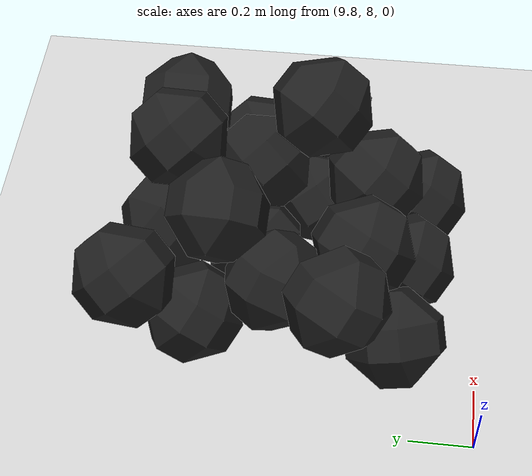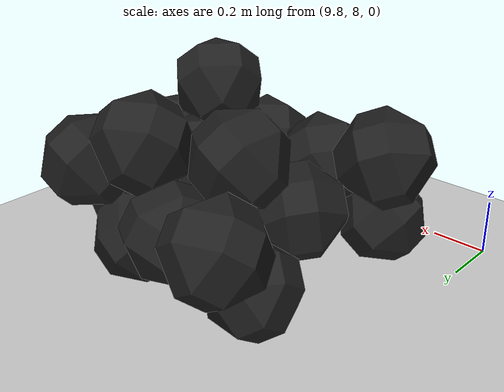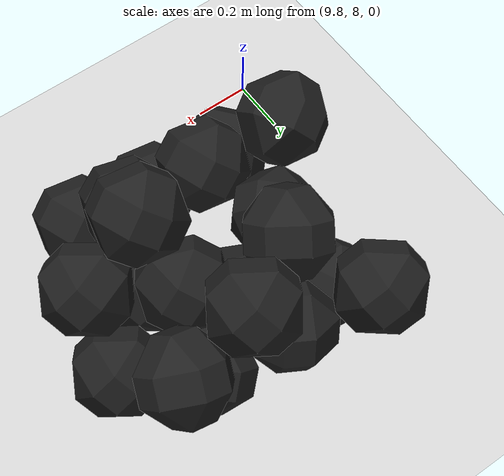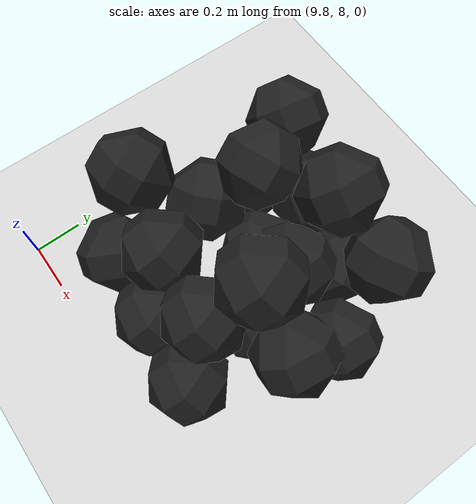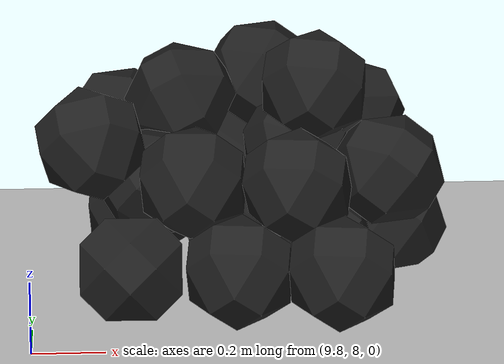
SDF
<sdf version="1.7">
 <world name="default">
  <model name="ground_plane">
   <static>1</static>
   <link name="link">
    <collision name="collision">
     <geometry><plane><normal>0 0 1</normal><size>100 100</size></plane></geometry>
     <surface><friction><ode><mu>100</mu><mu2>50</mu2></ode></friction></surface>
    </collision>
    <visual name="visual">
     <cast_shadows>0</cast_shadows>
     <geometry><plane><normal>0 0 1</normal><size>100 100</size></plane></geometry>
     <material>
      <script><uri>file://media/materials/scripts/gazebo.material</uri><name>Gazebo/Grey</name></script>
     </material>
    </visual>
   </link>
  </model>
  <model name="haoduomiantiaa_1">
   <link name="link_0">
    <inertial>
     <mass>0.2</mass>
     <inertia>
      <ixx>0.166667</ixx>
      <ixy>0</ixy>
      <ixz>0</ixz>
      <iyy>0.166667</iyy>
      <iyz>0</iyz>
      <izz>0.166667</izz>
     </inertia>
    </inertial>
    <visual name="visual">
     <geometry>
      <mesh>
       <uri>/home/lihaoyang/catkin_ws/src/pudong_gazebo/world/stl/haoduomianti.stl</uri>
       <scale>1 1 1</scale>
      </mesh>
     </geometry>
     <material>
      <lighting>1</lighting>
      <script><uri>file://media/materials/scripts/gazebo.material</uri><name>Gazebo/Black</name></script>
      <shader type="pixel"><normal_map>__default__</normal_map></shader>
      <ambient>0.3 0.3 0.3 1</ambient>
      <diffuse>0.7 0.7 0.7 1</diffuse>
      <specular>0.01 0.01 0.01 1</specular>
      <emissive>0 0 0 1</emissive>
     </material>
    </visual>
    <collision name="collision">
     <geometry>
      <mesh>
       <uri>/home/lihaoyang/catkin_ws/src/pudong_gazebo/world/stl/haoduomianti.stl</uri>
       <scale>1 1 1</scale>
      </mesh>
     </geometry>
     <surface>
      <friction>
       <ode><mu>1</mu><mu2>1</mu2><fdir1>0 0 0</fdir1><slip1>0</slip1><slip2>0</slip2></ode>
       <torsional>
        <coefficient>1</coefficient>
        <patch_radius>0</patch_radius>
        <surface_radius>0</surface_radius>
        <use_patch_radius>1</use_patch_radius>
        <ode><slip>0</slip></ode>
       </torsional>
      </friction>
      <bounce><restitution_coefficient>0</restitution_coefficient><threshold>1e+06</threshold></bounce>
      <contact>
       <collide_without_contact>0</collide_without_contact>
       <collide_without_contact_bitmask>1</collide_without_contact_bitmask>
       <collide_bitmask>1</collide_bitmask>
       <ode>
        <soft_cfm>0</soft_cfm>
        <soft_erp>0.2</soft_erp>
        <kp>1e+13</kp>
        <kd>1</kd>
        <max_vel>0.01</max_vel>
        <min_depth>0</min_depth>
       </ode>
       <bullet>
        <split_impulse>1</split_impulse>
        <split_impulse_penetration_threshold>-0.01</split_impulse_penetration_threshold>
        <soft_cfm>0</soft_cfm>
        <soft_erp>0.2</soft_erp>
        <kp>1e+13</kp>
        <kd>1</kd>
       </bullet>
      </contact>
     </surface>
    </collision>
   </link>
   <static>0</static>
   <pose>10.077 9.0909 0.114912 0.739694 -0.61934 0.940514</pose>
  </model>
  <model name="haoduomiantiaa_6">
   <link name="link_0">
    <inertial>
     <mass>0.2</mass>
     <inertia>
      <ixx>0.166667</ixx>
      <ixy>0</ixy>
      <ixz>0</ixz>
      <iyy>0.166667</iyy>
      <iyz>0</iyz>
      <izz>0.166667</izz>
     </inertia>
    </inertial>
    <visual name="visual">
     <geometry>
      <mesh>
       <uri>/home/lihaoyang/catkin_ws/src/pudong_gazebo/world/stl/haoduomianti.stl</uri>
       <scale>1 1 1</scale>
      </mesh>
     </geometry>
     <material>
      <lighting>1</lighting>
      <script><uri>file://media/materials/scripts/gazebo.material</uri><name>Gazebo/Black</name></script>
      <shader type="pixel"><normal_map>__default__</normal_map></shader>
      <ambient>0.3 0.3 0.3 1</ambient>
      <diffuse>0.7 0.7 0.7 1</diffuse>
      <specular>0.01 0.01 0.01 1</specular>
      <emissive>0 0 0 1</emissive>
     </material>
    </visual>
    <collision name="collision">
     <geometry>
      <mesh>
       <uri>/home/lihaoyang/catkin_ws/src/pudong_gazebo/world/stl/haoduomianti.stl</uri>
       <scale>1 1 1</scale>
      </mesh>
     </geometry>
     <surface>
      <friction>
       <ode><mu>1</mu><mu2>1</mu2><fdir1>0 0 0</fdir1><slip1>0</slip1><slip2>0</slip2></ode>
       <torsional>
        <coefficient>1</coefficient>
        <patch_radius>0</patch_radius>
        <surface_radius>0</surface_radius>
        <use_patch_radius>1</use_patch_radius>
        <ode><slip>0</slip></ode>
       </torsional>
      </friction>
      <bounce><restitution_coefficient>0</restitution_coefficient><threshold>1e+06</threshold></bounce>
      <contact>
       <collide_without_contact>0</collide_without_contact>
       <collide_without_contact_bitmask>1</collide_without_contact_bitmask>
       <collide_bitmask>1</collide_bitmask>
       <ode>
        <soft_cfm>0</soft_cfm>
        <soft_erp>0.2</soft_erp>
        <kp>1e+13</kp>
        <kd>1</kd>
        <max_vel>0.01</max_vel>
        <min_depth>0</min_depth>
       </ode>
       <bullet>
        <split_impulse>1</split_impulse>
        <split_impulse_penetration_threshold>-0.01</split_impulse_penetration_threshold>
        <soft_cfm>0</soft_cfm>
        <soft_erp>0.2</soft_erp>
        <kp>1e+13</kp>
        <kd>1</kd>
       </bullet>
      </contact>
     </surface>
    </collision>
   </link>
   <static>0</static>
   <pose>10.6437 8.86685 -0.100521 0.469259 -0.728322 0.060027</pose>
  </model>
  <model name="haoduomiantiaa_7">
   <link name="link_0">
    <inertial>
     <mass>0.2</mass>
     <inertia>
      <ixx>0.166667</ixx>
      <ixy>0</ixy>
      <ixz>0</ixz>
      <iyy>0.166667</iyy>
      <iyz>0</iyz>
      <izz>0.166667</izz>
     </inertia>
    </inertial>
    <visual name="visual">
     <geometry>
      <mesh>
       <uri>/home/lihaoyang/catkin_ws/src/pudong_gazebo/world/stl/haoduomianti.stl</uri>
       <scale>1 1 1</scale>
      </mesh>
     </geometry>
     <material>
      <lighting>1</lighting>
      <script><uri>file://media/materials/scripts/gazebo.material</uri><name>Gazebo/Black</name></script>
      <shader type="pixel"><normal_map>__default__</normal_map></shader>
      <ambient>0.3 0.3 0.3 1</ambient>
      <diffuse>0.7 0.7 0.7 1</diffuse>
      <specular>0.01 0.01 0.01 1</specular>
      <emissive>0 0 0 1</emissive>
     </material>
    </visual>
    <collision name="collision">
     <geometry>
      <mesh>
       <uri>/home/lihaoyang/catkin_ws/src/pudong_gazebo/world/stl/haoduomianti.stl</uri>
       <scale>1 1 1</scale>
      </mesh>
     </geometry>
     <surface>
      <friction>
       <ode><mu>1</mu><mu2>1</mu2><fdir1>0 0 0</fdir1><slip1>0</slip1><slip2>0</slip2></ode>
       <torsional>
        <coefficient>1</coefficient>
        <patch_radius>0</patch_radius>
        <surface_radius>0</surface_radius>
        <use_patch_radius>1</use_patch_radius>
        <ode><slip>0</slip></ode>
       </torsional>
      </friction>
      <bounce><restitution_coefficient>0</restitution_coefficient><threshold>1e+06</threshold></bounce>
      <contact>
       <collide_without_contact>0</collide_without_contact>
       <collide_without_contact_bitmask>1</collide_without_contact_bitmask>
       <collide_bitmask>1</collide_bitmask>
       <ode>
        <soft_cfm>0</soft_cfm>
        <soft_erp>0.2</soft_erp>
        <kp>1e+13</kp>
        <kd>1</kd>
        <max_vel>0.01</max_vel>
        <min_depth>0</min_depth>
       </ode>
       <bullet>
        <split_impulse>1</split_impulse>
        <split_impulse_penetration_threshold>-0.01</split_impulse_penetration_threshold>
        <soft_cfm>0</soft_cfm>
        <soft_erp>0.2</soft_erp>
        <kp>1e+13</kp>
        <kd>1</kd>
       </bullet>
      </contact>
     </surface>
    </collision>
   </link>
   <static>0</static>
   <pose>10.8619 8.7614 -0.115311 0.786169 -0.612216 -1.12057</pose>
  </model>
  <model name="haoduomiantiaa_8">
   <link name="link_0">
    <inertial>
     <mass>0.2</mass>
     <inertia>
      <ixx>0.166667</ixx>
      <ixy>0</ixy>
      <ixz>0</ixz>
      <iyy>0.166667</iyy>
      <iyz>0</iyz>
      <izz>0.166667</izz>
     </inertia>
    </inertial>
    <visual name="visual">
     <geometry>
      <mesh>
       <uri>/home/lihaoyang/catkin_ws/src/pudong_gazebo/world/stl/haoduomianti.stl</uri>
       <scale>1 1 1</scale>
      </mesh>
     </geometry>
     <material>
      <lighting>1</lighting>
      <script><uri>file://media/materials/scripts/gazebo.material</uri><name>Gazebo/Black</name></script>
      <shader type="pixel"><normal_map>__default__</normal_map></shader>
      <ambient>0.3 0.3 0.3 1</ambient>
      <diffuse>0.7 0.7 0.7 1</diffuse>
      <specular>0.01 0.01 0.01 1</specular>
      <emissive>0 0 0 1</emissive>
     </material>
    </visual>
    <collision name="collision">
     <geometry>
      <mesh>
       <uri>/home/lihaoyang/catkin_ws/src/pudong_gazebo/world/stl/haoduomianti.stl</uri>
       <scale>1 1 1</scale>
      </mesh>
     </geometry>
     <surface>
      <friction>
       <ode><mu>1</mu><mu2>1</mu2><fdir1>0 0 0</fdir1><slip1>0</slip1><slip2>0</slip2></ode>
       <torsional>
        <coefficient>1</coefficient>
        <patch_radius>0</patch_radius>
        <surface_radius>0</surface_radius>
        <use_patch_radius>1</use_patch_radius>
        <ode><slip>0</slip></ode>
       </torsional>
      </friction>
      <bounce><restitution_coefficient>0</restitution_coefficient><threshold>1e+06</threshold></bounce>
      <contact>
       <collide_without_contact>0</collide_without_contact>
       <collide_without_contact_bitmask>1</collide_without_contact_bitmask>
       <collide_bitmask>1</collide_bitmask>
       <ode>
        <soft_cfm>0</soft_cfm>
        <soft_erp>0.2</soft_erp>
        <kp>1e+13</kp>
        <kd>1</kd>
        <max_vel>0.01</max_vel>
        <min_depth>0</min_depth>
       </ode>
       <bullet>
        <split_impulse>1</split_impulse>
        <split_impulse_penetration_threshold>-0.01</split_impulse_penetration_threshold>
        <soft_cfm>0</soft_cfm>
        <soft_erp>0.2</soft_erp>
        <kp>1e+13</kp>
        <kd>1</kd>
       </bullet>
      </contact>
     </surface>
    </collision>
   </link>
   <static>0</static>
   <pose>10.5253 8.73953 0.117708 0.687928 -0.785552 -3.00844</pose>
  </model>
  <model name="haoduomiantiaa_12">
   <link name="link_0">
    <inertial>
     <mass>0.2</mass>
     <inertia>
      <ixx>0.166667</ixx>
      <ixy>0</ixy>
      <ixz>0</ixz>
      <iyy>0.166667</iyy>
      <iyz>0</iyz>
      <izz>0.166667</izz>
     </inertia>
    </inertial>
    <visual name="visual">
     <geometry>
      <mesh>
       <uri>/home/lihaoyang/catkin_ws/src/pudong_gazebo/world/stl/haoduomianti.stl</uri>
       <scale>1 1 1</scale>
      </mesh>
     </geometry>
     <material>
      <lighting>1</lighting>
      <script><uri>file://media/materials/scripts/gazebo.material</uri><name>Gazebo/Black</name></script>
      <shader type="pixel"><normal_map>__default__</normal_map></shader>
      <ambient>0.3 0.3 0.3 1</ambient>
      <diffuse>0.7 0.7 0.7 1</diffuse>
      <specular>0.01 0.01 0.01 1</specular>
      <emissive>0 0 0 1</emissive>
     </material>
    </visual>
    <collision name="collision">
     <geometry>
      <mesh>
       <uri>/home/lihaoyang/catkin_ws/src/pudong_gazebo/world/stl/haoduomianti.stl</uri>
       <scale>1 1 1</scale>
      </mesh>
     </geometry>
     <surface>
      <friction>
       <ode><mu>1</mu><mu2>1</mu2><fdir1>0 0 0</fdir1><slip1>0</slip1><slip2>0</slip2></ode>
       <torsional>
        <coefficient>1</coefficient>
        <patch_radius>0</patch_radius>
        <surface_radius>0</surface_radius>
        <use_patch_radius>1</use_patch_radius>
        <ode><slip>0</slip></ode>
       </torsional>
      </friction>
      <bounce><restitution_coefficient>0</restitution_coefficient><threshold>1e+06</threshold></bounce>
      <contact>
       <collide_without_contact>0</collide_without_contact>
       <collide_without_contact_bitmask>1</collide_without_contact_bitmask>
       <collide_bitmask>1</collide_bitmask>
       <ode>
        <soft_cfm>0</soft_cfm>
        <soft_erp>0.2</soft_erp>
        <kp>1e+13</kp>
        <kd>1</kd>
        <max_vel>0.01</max_vel>
        <min_depth>0</min_depth>
       </ode>
       <bullet>
        <split_impulse>1</split_impulse>
        <split_impulse_penetration_threshold>-0.01</split_impulse_penetration_threshold>
        <soft_cfm>0</soft_cfm>
        <soft_erp>0.2</soft_erp>
        <kp>1e+13</kp>
        <kd>1</kd>
       </bullet>
      </contact>
     </surface>
    </collision>
   </link>
   <static>0</static>
   <pose>10.3774 8.24264 -0.115549 0.785408 -0.615455 -0.676633</pose>
  </model>
  <model name="haoduomiantiaa_28">
   <link name="link_0">
    <inertial>
     <mass>0.2</mass>
     <inertia>
      <ixx>0.166667</ixx>
      <ixy>0</ixy>
      <ixz>0</ixz>
      <iyy>0.166667</iyy>
      <iyz>0</iyz>
      <izz>0.166667</izz>
     </inertia>
    </inertial>
    <visual name="visual">
     <geometry>
      <mesh>
       <uri>/home/lihaoyang/catkin_ws/src/pudong_gazebo/world/stl/haoduomianti.stl</uri>
       <scale>1 1 1</scale>
      </mesh>
     </geometry>
     <material>
      <lighting>1</lighting>
      <script><uri>file://media/materials/scripts/gazebo.material</uri><name>Gazebo/Black</name></script>
      <shader type="pixel"><normal_map>__default__</normal_map></shader>
      <ambient>0.3 0.3 0.3 1</ambient>
      <diffuse>0.7 0.7 0.7 1</diffuse>
      <specular>0.01 0.01 0.01 1</specular>
      <emissive>0 0 0 1</emissive>
     </material>
    </visual>
    <collision name="collision">
     <geometry>
      <mesh>
       <uri>/home/lihaoyang/catkin_ws/src/pudong_gazebo/world/stl/haoduomianti.stl</uri>
       <scale>1 1 1</scale>
      </mesh>
     </geometry>
     <surface>
      <friction>
       <ode><mu>1</mu><mu2>1</mu2><fdir1>0 0 0</fdir1><slip1>0</slip1><slip2>0</slip2></ode>
       <torsional>
        <coefficient>1</coefficient>
        <patch_radius>0</patch_radius>
        <surface_radius>0</surface_radius>
        <use_patch_radius>1</use_patch_radius>
        <ode><slip>0</slip></ode>
       </torsional>
      </friction>
      <bounce><restitution_coefficient>0</restitution_coefficient><threshold>1e+06</threshold></bounce>
      <contact>
       <collide_without_contact>0</collide_without_contact>
       <collide_without_contact_bitmask>1</collide_without_contact_bitmask>
       <collide_bitmask>1</collide_bitmask>
       <ode>
        <soft_cfm>0</soft_cfm>
        <soft_erp>0.2</soft_erp>
        <kp>1e+13</kp>
        <kd>1</kd>
        <max_vel>0.01</max_vel>
        <min_depth>0</min_depth>
       </ode>
       <bullet>
        <split_impulse>1</split_impulse>
        <split_impulse_penetration_threshold>-0.01</split_impulse_penetration_threshold>
        <soft_cfm>0</soft_cfm>
        <soft_erp>0.2</soft_erp>
        <kp>1e+13</kp>
        <kd>1</kd>
       </bullet>
      </contact>
     </surface>
    </collision>
   </link>
   <static>0</static>
   <pose>10.028 8.47119 0.216061 0.818176 -0.377138 -2.62453</pose>
  </model>
  <model name="haoduomiantiaa_34">
   <link name="link_0">
    <inertial>
     <mass>0.2</mass>
     <inertia>
      <ixx>0.166667</ixx>
      <ixy>0</ixy>
      <ixz>0</ixz>
      <iyy>0.166667</iyy>
      <iyz>0</iyz>
      <izz>0.166667</izz>
     </inertia>
    </inertial>
    <visual name="visual">
     <geometry>
      <mesh>
       <uri>/home/lihaoyang/catkin_ws/src/pudong_gazebo/world/stl/haoduomianti.stl</uri>
       <scale>1 1 1</scale>
      </mesh>
     </geometry>
     <material>
      <lighting>1</lighting>
      <script><uri>file://media/materials/scripts/gazebo.material</uri><name>Gazebo/Black</name></script>
      <shader type="pixel"><normal_map>__default__</normal_map></shader>
      <ambient>0.3 0.3 0.3 1</ambient>
      <diffuse>0.7 0.7 0.7 1</diffuse>
      <specular>0.01 0.01 0.01 1</specular>
      <emissive>0 0 0 1</emissive>
     </material>
    </visual>
    <collision name="collision">
     <geometry>
      <mesh>
       <uri>/home/lihaoyang/catkin_ws/src/pudong_gazebo/world/stl/haoduomianti.stl</uri>
       <scale>1 1 1</scale>
      </mesh>
     </geometry>
     <surface>
      <friction>
       <ode><mu>1</mu><mu2>1</mu2><fdir1>0 0 0</fdir1><slip1>0</slip1><slip2>0</slip2></ode>
       <torsional>
        <coefficient>1</coefficient>
        <patch_radius>0</patch_radius>
        <surface_radius>0</surface_radius>
        <use_patch_radius>1</use_patch_radius>
        <ode><slip>0</slip></ode>
       </torsional>
      </friction>
      <bounce><restitution_coefficient>0</restitution_coefficient><threshold>1e+06</threshold></bounce>
      <contact>
       <collide_without_contact>0</collide_without_contact>
       <collide_without_contact_bitmask>1</collide_without_contact_bitmask>
       <collide_bitmask>1</collide_bitmask>
       <ode>
        <soft_cfm>0</soft_cfm>
        <soft_erp>0.2</soft_erp>
        <kp>1e+13</kp>
        <kd>1</kd>
        <max_vel>0.01</max_vel>
        <min_depth>0</min_depth>
       </ode>
       <bullet>
        <split_impulse>1</split_impulse>
        <split_impulse_penetration_threshold>-0.01</split_impulse_penetration_threshold>
        <soft_cfm>0</soft_cfm>
        <soft_erp>0.2</soft_erp>
        <kp>1e+13</kp>
        <kd>1</kd>
       </bullet>
      </contact>
     </surface>
    </collision>
   </link>
   <static>0</static>
   <pose>10.1129 8.90564 -0.115669 0.785466 -0.615508 -0.630409</pose>
  </model>
  <model name="haoduomiantiaa_46">
   <link name="link_0">
    <inertial>
     <mass>0.2</mass>
     <inertia>
      <ixx>0.166667</ixx>
      <ixy>0</ixy>
      <ixz>0</ixz>
      <iyy>0.166667</iyy>
      <iyz>0</iyz>
      <izz>0.166667</izz>
     </inertia>
    </inertial>
    <visual name="visual">
     <geometry>
      <mesh>
       <uri>/home/lihaoyang/catkin_ws/src/pudong_gazebo/world/stl/haoduomianti.stl</uri>
       <scale>1 1 1</scale>
      </mesh>
     </geometry>
     <material>
      <lighting>1</lighting>
      <script><uri>file://media/materials/scripts/gazebo.material</uri><name>Gazebo/Black</name></script>
      <shader type="pixel"><normal_map>__default__</normal_map></shader>
      <ambient>0.3 0.3 0.3 1</ambient>
      <diffuse>0.7 0.7 0.7 1</diffuse>
      <specular>0.01 0.01 0.01 1</specular>
      <emissive>0 0 0 1</emissive>
     </material>
    </visual>
    <collision name="collision">
     <geometry>
      <mesh>
       <uri>/home/lihaoyang/catkin_ws/src/pudong_gazebo/world/stl/haoduomianti.stl</uri>
       <scale>1 1 1</scale>
      </mesh>
     </geometry>
     <surface>
      <friction>
       <ode><mu>1</mu><mu2>1</mu2><fdir1>0 0 0</fdir1><slip1>0</slip1><slip2>0</slip2></ode>
       <torsional>
        <coefficient>1</coefficient>
        <patch_radius>0</patch_radius>
        <surface_radius>0</surface_radius>
        <use_patch_radius>1</use_patch_radius>
        <ode><slip>0</slip></ode>
       </torsional>
      </friction>
      <bounce><restitution_coefficient>0</restitution_coefficient><threshold>1e+06</threshold></bounce>
      <contact>
       <collide_without_contact>0</collide_without_contact>
       <collide_without_contact_bitmask>1</collide_without_contact_bitmask>
       <collide_bitmask>1</collide_bitmask>
       <ode>
        <soft_cfm>0</soft_cfm>
        <soft_erp>0.2</soft_erp>
        <kp>1e+13</kp>
        <kd>1</kd>
        <max_vel>0.01</max_vel>
        <min_depth>0</min_depth>
       </ode>
       <bullet>
        <split_impulse>1</split_impulse>
        <split_impulse_penetration_threshold>-0.01</split_impulse_penetration_threshold>
        <soft_cfm>0</soft_cfm>
        <soft_erp>0.2</soft_erp>
        <kp>1e+13</kp>
        <kd>1</kd>
       </bullet>
      </contact>
     </surface>
    </collision>
   </link>
   <static>0</static>
   <pose>10.2554 8.36507 0.10676 0.708495 -0.66373 -0.62702</pose>
  </model>
  <model name="haoduomiantiaa_56">
   <link name="link_0">
    <inertial>
     <mass>0.2</mass>
     <inertia>
      <ixx>0.166667</ixx>
      <ixy>0</ixy>
      <ixz>0</ixz>
      <iyy>0.166667</iyy>
      <iyz>0</iyz>
      <izz>0.166667</izz>
     </inertia>
    </inertial>
    <visual name="visual">
     <geometry>
      <mesh>
       <uri>/home/lihaoyang/catkin_ws/src/pudong_gazebo/world/stl/haoduomianti.stl</uri>
       <scale>1 1 1</scale>
      </mesh>
     </geometry>
     <material>
      <lighting>1</lighting>
      <script><uri>file://media/materials/scripts/gazebo.material</uri><name>Gazebo/Black</name></script>
      <shader type="pixel"><normal_map>__default__</normal_map></shader>
      <ambient>0.3 0.3 0.3 1</ambient>
      <diffuse>0.7 0.7 0.7 1</diffuse>
      <specular>0.01 0.01 0.01 1</specular>
      <emissive>0 0 0 1</emissive>
     </material>
    </visual>
    <collision name="collision">
     <geometry>
      <mesh>
       <uri>/home/lihaoyang/catkin_ws/src/pudong_gazebo/world/stl/haoduomianti.stl</uri>
       <scale>1 1 1</scale>
      </mesh>
     </geometry>
     <surface>
      <friction>
       <ode><mu>1</mu><mu2>1</mu2><fdir1>0 0 0</fdir1><slip1>0</slip1><slip2>0</slip2></ode>
       <torsional>
        <coefficient>1</coefficient>
        <patch_radius>0</patch_radius>
        <surface_radius>0</surface_radius>
        <use_patch_radius>1</use_patch_radius>
        <ode><slip>0</slip></ode>
       </torsional>
      </friction>
      <bounce><restitution_coefficient>0</restitution_coefficient><threshold>1e+06</threshold></bounce>
      <contact>
       <collide_without_contact>0</collide_without_contact>
       <collide_without_contact_bitmask>1</collide_without_contact_bitmask>
       <collide_bitmask>1</collide_bitmask>
       <ode>
        <soft_cfm>0</soft_cfm>
        <soft_erp>0.2</soft_erp>
        <kp>1e+13</kp>
        <kd>1</kd>
        <max_vel>0.01</max_vel>
        <min_depth>0</min_depth>
       </ode>
       <bullet>
        <split_impulse>1</split_impulse>
        <split_impulse_penetration_threshold>-0.01</split_impulse_penetration_threshold>
        <soft_cfm>0</soft_cfm>
        <soft_erp>0.2</soft_erp>
        <kp>1e+13</kp>
        <kd>1</kd>
       </bullet>
      </contact>
     </surface>
    </collision>
   </link>
   <static>0</static>
   <pose>10.384 8.75066 -0.112911 0.851716 -0.645047 1.05201</pose>
  </model>
  <model name="haoduomiantiaa_66">
   <link name="link_0">
    <inertial>
     <mass>0.2</mass>
     <inertia>
      <ixx>0.166667</ixx>
      <ixy>0</ixy>
      <ixz>0</ixz>
      <iyy>0.166667</iyy>
      <iyz>0</iyz>
      <izz>0.166667</izz>
     </inertia>
    </inertial>
    <visual name="visual">
     <geometry>
      <mesh>
       <uri>/home/lihaoyang/catkin_ws/src/pudong_gazebo/world/stl/haoduomianti.stl</uri>
       <scale>1 1 1</scale>
      </mesh>
     </geometry>
     <material>
      <lighting>1</lighting>
      <script><uri>file://media/materials/scripts/gazebo.material</uri><name>Gazebo/Black</name></script>
      <shader type="pixel"><normal_map>__default__</normal_map></shader>
      <ambient>0.3 0.3 0.3 1</ambient>
      <diffuse>0.7 0.7 0.7 1</diffuse>
      <specular>0.01 0.01 0.01 1</specular>
      <emissive>0 0 0 1</emissive>
     </material>
    </visual>
    <collision name="collision">
     <geometry>
      <mesh>
       <uri>/home/lihaoyang/catkin_ws/src/pudong_gazebo/world/stl/haoduomianti.stl</uri>
       <scale>1 1 1</scale>
      </mesh>
     </geometry>
     <surface>
      <friction>
       <ode><mu>1</mu><mu2>1</mu2><fdir1>0 0 0</fdir1><slip1>0</slip1><slip2>0</slip2></ode>
       <torsional>
        <coefficient>1</coefficient>
        <patch_radius>0</patch_radius>
        <surface_radius>0</surface_radius>
        <use_patch_radius>1</use_patch_radius>
        <ode><slip>0</slip></ode>
       </torsional>
      </friction>
      <bounce><restitution_coefficient>0</restitution_coefficient><threshold>1e+06</threshold></bounce>
      <contact>
       <collide_without_contact>0</collide_without_contact>
       <collide_without_contact_bitmask>1</collide_without_contact_bitmask>
       <collide_bitmask>1</collide_bitmask>
       <ode>
        <soft_cfm>0</soft_cfm>
        <soft_erp>0.2</soft_erp>
        <kp>1e+13</kp>
        <kd>1</kd>
        <max_vel>0.01</max_vel>
        <min_depth>0</min_depth>
       </ode>
       <bullet>
        <split_impulse>1</split_impulse>
        <split_impulse_penetration_threshold>-0.01</split_impulse_penetration_threshold>
        <soft_cfm>0</soft_cfm>
        <soft_erp>0.2</soft_erp>
        <kp>1e+13</kp>
        <kd>1</kd>
       </bullet>
      </contact>
     </surface>
    </collision>
   </link>
   <static>0</static>
   <pose>10.2392 8.73615 0.06967 0.163214 -0.739197 2.28062</pose>
  </model>
  <model name="haoduomiantiaa_67">
   <link name="link_0">
    <inertial>
     <mass>0.2</mass>
     <inertia>
      <ixx>0.166667</ixx>
      <ixy>0</ixy>
      <ixz>0</ixz>
      <iyy>0.166667</iyy>
      <iyz>0</iyz>
      <izz>0.166667</izz>
     </inertia>
    </inertial>
    <visual name="visual">
     <geometry>
      <mesh>
       <uri>/home/lihaoyang/catkin_ws/src/pudong_gazebo/world/stl/haoduomianti.stl</uri>
       <scale>1 1 1</scale>
      </mesh>
     </geometry>
     <material>
      <lighting>1</lighting>
      <script><uri>file://media/materials/scripts/gazebo.material</uri><name>Gazebo/Black</name></script>
      <shader type="pixel"><normal_map>__default__</normal_map></shader>
      <ambient>0.3 0.3 0.3 1</ambient>
      <diffuse>0.7 0.7 0.7 1</diffuse>
      <specular>0.01 0.01 0.01 1</specular>
      <emissive>0 0 0 1</emissive>
     </material>
    </visual>
    <collision name="collision">
     <geometry>
      <mesh>
       <uri>/home/lihaoyang/catkin_ws/src/pudong_gazebo/world/stl/haoduomianti.stl</uri>
       <scale>1 1 1</scale>
      </mesh>
     </geometry>
     <surface>
      <friction>
       <ode><mu>1</mu><mu2>1</mu2><fdir1>0 0 0</fdir1><slip1>0</slip1><slip2>0</slip2></ode>
       <torsional>
        <coefficient>1</coefficient>
        <patch_radius>0</patch_radius>
        <surface_radius>0</surface_radius>
        <use_patch_radius>1</use_patch_radius>
        <ode><slip>0</slip></ode>
       </torsional>
      </friction>
      <bounce><restitution_coefficient>0</restitution_coefficient><threshold>1e+06</threshold></bounce>
      <contact>
       <collide_without_contact>0</collide_without_contact>
       <collide_without_contact_bitmask>1</collide_without_contact_bitmask>
       <collide_bitmask>1</collide_bitmask>
       <ode>
        <soft_cfm>0</soft_cfm>
        <soft_erp>0.2</soft_erp>
        <kp>1e+13</kp>
        <kd>1</kd>
        <max_vel>0.01</max_vel>
        <min_depth>0</min_depth>
       </ode>
       <bullet>
        <split_impulse>1</split_impulse>
        <split_impulse_penetration_threshold>-0.01</split_impulse_penetration_threshold>
        <soft_cfm>0</soft_cfm>
        <soft_erp>0.2</soft_erp>
        <kp>1e+13</kp>
        <kd>1</kd>
       </bullet>
      </contact>
     </surface>
    </collision>
   </link>
   <static>0</static>
   <pose>10.205 8.81273 0.253228 0.709028 -0.493663 -0.056381</pose>
  </model>
  <model name="haoduomiantiaa_75">
   <link name="link_0">
    <inertial>
     <mass>0.2</mass>
     <inertia>
      <ixx>0.166667</ixx>
      <ixy>0</ixy>
      <ixz>0</ixz>
      <iyy>0.166667</iyy>
      <iyz>0</iyz>
      <izz>0.166667</izz>
     </inertia>
    </inertial>
    <visual name="visual">
     <geometry>
      <mesh>
       <uri>/home/lihaoyang/catkin_ws/src/pudong_gazebo/world/stl/haoduomianti.stl</uri>
       <scale>1 1 1</scale>
      </mesh>
     </geometry>
     <material>
      <lighting>1</lighting>
      <script><uri>file://media/materials/scripts/gazebo.material</uri><name>Gazebo/Black</name></script>
      <shader type="pixel"><normal_map>__default__</normal_map></shader>
      <ambient>0.3 0.3 0.3 1</ambient>
      <diffuse>0.7 0.7 0.7 1</diffuse>
      <specular>0.01 0.01 0.01 1</specular>
      <emissive>0 0 0 1</emissive>
     </material>
    </visual>
    <collision name="collision">
     <geometry>
      <mesh>
       <uri>/home/lihaoyang/catkin_ws/src/pudong_gazebo/world/stl/haoduomianti.stl</uri>
       <scale>1 1 1</scale>
      </mesh>
     </geometry>
     <surface>
      <friction>
       <ode><mu>1</mu><mu2>1</mu2><fdir1>0 0 0</fdir1><slip1>0</slip1><slip2>0</slip2></ode>
       <torsional>
        <coefficient>1</coefficient>
        <patch_radius>0</patch_radius>
        <surface_radius>0</surface_radius>
        <use_patch_radius>1</use_patch_radius>
        <ode><slip>0</slip></ode>
       </torsional>
      </friction>
      <bounce><restitution_coefficient>0</restitution_coefficient><threshold>1e+06</threshold></bounce>
      <contact>
       <collide_without_contact>0</collide_without_contact>
       <collide_without_contact_bitmask>1</collide_without_contact_bitmask>
       <collide_bitmask>1</collide_bitmask>
       <ode>
        <soft_cfm>0</soft_cfm>
        <soft_erp>0.2</soft_erp>
        <kp>1e+13</kp>
        <kd>1</kd>
        <max_vel>0.01</max_vel>
        <min_depth>0</min_depth>
       </ode>
       <bullet>
        <split_impulse>1</split_impulse>
        <split_impulse_penetration_threshold>-0.01</split_impulse_penetration_threshold>
        <soft_cfm>0</soft_cfm>
        <soft_erp>0.2</soft_erp>
        <kp>1e+13</kp>
        <kd>1</kd>
       </bullet>
      </contact>
     </surface>
    </collision>
   </link>
   <static>0</static>
   <pose>10.8163 8.56214 0.091967 0.775448 -0.551151 -1.17199</pose>
  </model>
  <model name="haoduomiantiaa_90">
   <link name="link_0">
    <inertial>
     <mass>0.2</mass>
     <inertia>
      <ixx>0.166667</ixx>
      <ixy>0</ixy>
      <ixz>0</ixz>
      <iyy>0.166667</iyy>
      <iyz>0</iyz>
      <izz>0.166667</izz>
     </inertia>
    </inertial>
    <visual name="visual">
     <geometry>
      <mesh>
       <uri>/home/lihaoyang/catkin_ws/src/pudong_gazebo/world/stl/haoduomianti.stl</uri>
       <scale>1 1 1</scale>
      </mesh>
     </geometry>
     <material>
      <lighting>1</lighting>
      <script><uri>file://media/materials/scripts/gazebo.material</uri><name>Gazebo/Black</name></script>
      <shader type="pixel"><normal_map>__default__</normal_map></shader>
      <ambient>0.3 0.3 0.3 1</ambient>
      <diffuse>0.7 0.7 0.7 1</diffuse>
      <specular>0.01 0.01 0.01 1</specular>
      <emissive>0 0 0 1</emissive>
     </material>
    </visual>
    <collision name="collision">
     <geometry>
      <mesh>
       <uri>/home/lihaoyang/catkin_ws/src/pudong_gazebo/world/stl/haoduomianti.stl</uri>
       <scale>1 1 1</scale>
      </mesh>
     </geometry>
     <surface>
      <friction>
       <ode><mu>1</mu><mu2>1</mu2><fdir1>0 0 0</fdir1><slip1>0</slip1><slip2>0</slip2></ode>
       <torsional>
        <coefficient>1</coefficient>
        <patch_radius>0</patch_radius>
        <surface_radius>0</surface_radius>
        <use_patch_radius>1</use_patch_radius>
        <ode><slip>0</slip></ode>
       </torsional>
      </friction>
      <bounce><restitution_coefficient>0</restitution_coefficient><threshold>1e+06</threshold></bounce>
      <contact>
       <collide_without_contact>0</collide_without_contact>
       <collide_without_contact_bitmask>1</collide_without_contact_bitmask>
       <collide_bitmask>1</collide_bitmask>
       <ode>
        <soft_cfm>0</soft_cfm>
        <soft_erp>0.2</soft_erp>
        <kp>1e+13</kp>
        <kd>1</kd>
        <max_vel>0.01</max_vel>
        <min_depth>0</min_depth>
       </ode>
       <bullet>
        <split_impulse>1</split_impulse>
        <split_impulse_penetration_threshold>-0.01</split_impulse_penetration_threshold>
        <soft_cfm>0</soft_cfm>
        <soft_erp>0.2</soft_erp>
        <kp>1e+13</kp>
        <kd>1</kd>
       </bullet>
      </contact>
     </surface>
    </collision>
   </link>
   <static>0</static>
   <pose>10.616 8.57136 -0.112351 0.785535 -0.54147 -1.16128</pose>
  </model>
  <model name="haoduomiantiaa_99">
   <link name="link_0">
    <inertial>
     <mass>0.2</mass>
     <inertia>
      <ixx>0.166667</ixx>
      <ixy>0</ixy>
      <ixz>0</ixz>
      <iyy>0.166667</iyy>
      <iyz>0</iyz>
      <izz>0.166667</izz>
     </inertia>
    </inertial>
    <visual name="visual">
     <geometry>
      <mesh>
       <uri>/home/lihaoyang/catkin_ws/src/pudong_gazebo/world/stl/haoduomianti.stl</uri>
       <scale>1 1 1</scale>
      </mesh>
     </geometry>
     <material>
      <lighting>1</lighting>
      <script><uri>file://media/materials/scripts/gazebo.material</uri><name>Gazebo/Black</name></script>
      <shader type="pixel"><normal_map>__default__</normal_map></shader>
      <ambient>0.3 0.3 0.3 1</ambient>
      <diffuse>0.7 0.7 0.7 1</diffuse>
      <specular>0.01 0.01 0.01 1</specular>
      <emissive>0 0 0 1</emissive>
     </material>
    </visual>
    <collision name="collision">
     <geometry>
      <mesh>
       <uri>/home/lihaoyang/catkin_ws/src/pudong_gazebo/world/stl/haoduomianti.stl</uri>
       <scale>1 1 1</scale>
      </mesh>
     </geometry>
     <surface>
      <friction>
       <ode><mu>1</mu><mu2>1</mu2><fdir1>0 0 0</fdir1><slip1>0</slip1><slip2>0</slip2></ode>
       <torsional>
        <coefficient>1</coefficient>
        <patch_radius>0</patch_radius>
        <surface_radius>0</surface_radius>
        <use_patch_radius>1</use_patch_radius>
        <ode><slip>0</slip></ode>
       </torsional>
      </friction>
      <bounce><restitution_coefficient>0</restitution_coefficient><threshold>1e+06</threshold></bounce>
      <contact>
       <collide_without_contact>0</collide_without_contact>
       <collide_without_contact_bitmask>1</collide_without_contact_bitmask>
       <collide_bitmask>1</collide_bitmask>
       <ode>
        <soft_cfm>0</soft_cfm>
        <soft_erp>0.2</soft_erp>
        <kp>1e+13</kp>
        <kd>1</kd>
        <max_vel>0.01</max_vel>
        <min_depth>0</min_depth>
       </ode>
       <bullet>
        <split_impulse>1</split_impulse>
        <split_impulse_penetration_threshold>-0.01</split_impulse_penetration_threshold>
        <soft_cfm>0</soft_cfm>
        <soft_erp>0.2</soft_erp>
        <kp>1e+13</kp>
        <kd>1</kd>
       </bullet>
      </contact>
     </surface>
    </collision>
   </link>
   <static>0</static>
   <pose>10.7168 9.01435 0.157611 0.567346 -0.642042 -1.93199</pose>
  </model>
  <model name="haoduomiantiaa_114">
   <link name="link_0">
    <inertial>
     <mass>0.2</mass>
     <inertia>
      <ixx>0.166667</ixx>
      <ixy>0</ixy>
      <ixz>0</ixz>
      <iyy>0.166667</iyy>
      <iyz>0</iyz>
      <izz>0.166667</izz>
     </inertia>
    </inertial>
    <visual name="visual">
     <geometry>
      <mesh>
       <uri>/home/lihaoyang/catkin_ws/src/pudong_gazebo/world/stl/haoduomianti.stl</uri>
       <scale>1 1 1</scale>
      </mesh>
     </geometry>
     <material>
      <lighting>1</lighting>
      <script><uri>file://media/materials/scripts/gazebo.material</uri><name>Gazebo/Black</name></script>
      <shader type="pixel"><normal_map>__default__</normal_map></shader>
      <ambient>0.3 0.3 0.3 1</ambient>
      <diffuse>0.7 0.7 0.7 1</diffuse>
      <specular>0.01 0.01 0.01 1</specular>
      <emissive>0 0 0 1</emissive>
     </material>
    </visual>
    <collision name="collision">
     <geometry>
      <mesh>
       <uri>/home/lihaoyang/catkin_ws/src/pudong_gazebo/world/stl/haoduomianti.stl</uri>
       <scale>1 1 1</scale>
      </mesh>
     </geometry>
     <surface>
      <friction>
       <ode><mu>1</mu><mu2>1</mu2><fdir1>0 0 0</fdir1><slip1>0</slip1><slip2>0</slip2></ode>
       <torsional>
        <coefficient>1</coefficient>
        <patch_radius>0</patch_radius>
        <surface_radius>0</surface_radius>
        <use_patch_radius>1</use_patch_radius>
        <ode><slip>0</slip></ode>
       </torsional>
      </friction>
      <bounce><restitution_coefficient>0</restitution_coefficient><threshold>1e+06</threshold></bounce>
      <contact>
       <collide_without_contact>0</collide_without_contact>
       <collide_without_contact_bitmask>1</collide_without_contact_bitmask>
       <collide_bitmask>1</collide_bitmask>
       <ode>
        <soft_cfm>0</soft_cfm>
        <soft_erp>0.2</soft_erp>
        <kp>1e+13</kp>
        <kd>1</kd>
        <max_vel>0.01</max_vel>
        <min_depth>0</min_depth>
       </ode>
       <bullet>
        <split_impulse>1</split_impulse>
        <split_impulse_penetration_threshold>-0.01</split_impulse_penetration_threshold>
        <soft_cfm>0</soft_cfm>
        <soft_erp>0.2</soft_erp>
        <kp>1e+13</kp>
        <kd>1</kd>
       </bullet>
      </contact>
     </surface>
    </collision>
   </link>
   <static>0</static>
   <pose>10.6606 8.20911 -0.115787 0.785505 -0.615497 1.405</pose>
  </model>
  <model name="haoduomiantiaa_123">
   <link name="link_0">
    <inertial>
     <mass>0.2</mass>
     <inertia>
      <ixx>0.166667</ixx>
      <ixy>0</ixy>
      <ixz>0</ixz>
      <iyy>0.166667</iyy>
      <iyz>0</iyz>
      <izz>0.166667</izz>
     </inertia>
    </inertial>
    <visual name="visual">
     <geometry>
      <mesh>
       <uri>/home/lihaoyang/catkin_ws/src/pudong_gazebo/world/stl/haoduomianti.stl</uri>
       <scale>1 1 1</scale>
      </mesh>
     </geometry>
     <material>
      <lighting>1</lighting>
      <script><uri>file://media/materials/scripts/gazebo.material</uri><name>Gazebo/Black</name></script>
      <shader type="pixel"><normal_map>__default__</normal_map></shader>
      <ambient>0.3 0.3 0.3 1</ambient>
      <diffuse>0.7 0.7 0.7 1</diffuse>
      <specular>0.01 0.01 0.01 1</specular>
      <emissive>0 0 0 1</emissive>
     </material>
    </visual>
    <collision name="collision">
     <geometry>
      <mesh>
       <uri>/home/lihaoyang/catkin_ws/src/pudong_gazebo/world/stl/haoduomianti.stl</uri>
       <scale>1 1 1</scale>
      </mesh>
     </geometry>
     <surface>
      <friction>
       <ode><mu>1</mu><mu2>1</mu2><fdir1>0 0 0</fdir1><slip1>0</slip1><slip2>0</slip2></ode>
       <torsional>
        <coefficient>1</coefficient>
        <patch_radius>0</patch_radius>
        <surface_radius>0</surface_radius>
        <use_patch_radius>1</use_patch_radius>
        <ode><slip>0</slip></ode>
       </torsional>
      </friction>
      <bounce><restitution_coefficient>0</restitution_coefficient><threshold>1e+06</threshold></bounce>
      <contact>
       <collide_without_contact>0</collide_without_contact>
       <collide_without_contact_bitmask>1</collide_without_contact_bitmask>
       <collide_bitmask>1</collide_bitmask>
       <ode>
        <soft_cfm>0</soft_cfm>
        <soft_erp>0.2</soft_erp>
        <kp>1e+13</kp>
        <kd>1</kd>
        <max_vel>0.01</max_vel>
        <min_depth>0</min_depth>
       </ode>
       <bullet>
        <split_impulse>1</split_impulse>
        <split_impulse_penetration_threshold>-0.01</split_impulse_penetration_threshold>
        <soft_cfm>0</soft_cfm>
        <soft_erp>0.2</soft_erp>
        <kp>1e+13</kp>
        <kd>1</kd>
       </bullet>
      </contact>
     </surface>
    </collision>
   </link>
   <static>0</static>
   <pose>10.0802 8.34372 -0.097745 0.423712 -0.739331 2.80465</pose>
  </model>
  <model name="haoduomiantiaa_127">
   <link name="link_0">
    <inertial>
     <mass>0.2</mass>
     <inertia>
      <ixx>0.166667</ixx>
      <ixy>0</ixy>
      <ixz>0</ixz>
      <iyy>0.166667</iyy>
      <iyz>0</iyz>
      <izz>0.166667</izz>
     </inertia>
    </inertial>
    <visual name="visual">
     <geometry>
      <mesh>
       <uri>/home/lihaoyang/catkin_ws/src/pudong_gazebo/world/stl/haoduomianti.stl</uri>
       <scale>1 1 1</scale>
      </mesh>
     </geometry>
     <material>
      <lighting>1</lighting>
      <script><uri>file://media/materials/scripts/gazebo.material</uri><name>Gazebo/Black</name></script>
      <shader type="pixel"><normal_map>__default__</normal_map></shader>
      <ambient>0.3 0.3 0.3 1</ambient>
      <diffuse>0.7 0.7 0.7 1</diffuse>
      <specular>0.01 0.01 0.01 1</specular>
      <emissive>0 0 0 1</emissive>
     </material>
    </visual>
    <collision name="collision">
     <geometry>
      <mesh>
       <uri>/home/lihaoyang/catkin_ws/src/pudong_gazebo/world/stl/haoduomianti.stl</uri>
       <scale>1 1 1</scale>
      </mesh>
     </geometry>
     <surface>
      <friction>
       <ode><mu>1</mu><mu2>1</mu2><fdir1>0 0 0</fdir1><slip1>0</slip1><slip2>0</slip2></ode>
       <torsional>
        <coefficient>1</coefficient>
        <patch_radius>0</patch_radius>
        <surface_radius>0</surface_radius>
        <use_patch_radius>1</use_patch_radius>
        <ode><slip>0</slip></ode>
       </torsional>
      </friction>
      <bounce><restitution_coefficient>0</restitution_coefficient><threshold>1e+06</threshold></bounce>
      <contact>
       <collide_without_contact>0</collide_without_contact>
       <collide_without_contact_bitmask>1</collide_without_contact_bitmask>
       <collide_bitmask>1</collide_bitmask>
       <ode>
        <soft_cfm>0</soft_cfm>
        <soft_erp>0.2</soft_erp>
        <kp>1e+13</kp>
        <kd>1</kd>
        <max_vel>0.01</max_vel>
        <min_depth>0</min_depth>
       </ode>
       <bullet>
        <split_impulse>1</split_impulse>
        <split_impulse_penetration_threshold>-0.01</split_impulse_penetration_threshold>
        <soft_cfm>0</soft_cfm>
        <soft_erp>0.2</soft_erp>
        <kp>1e+13</kp>
        <kd>1</kd>
       </bullet>
      </contact>
     </surface>
    </collision>
   </link>
   <static>0</static>
   <pose>10.4712 8.87037 0.097774 -0.089626 -0.471878 1.12538</pose>
  </model>
  <model name="haoduomiantiaa_133">
   <link name="link_0">
    <inertial>
     <mass>0.2</mass>
     <inertia>
      <ixx>0.166667</ixx>
      <ixy>0</ixy>
      <ixz>0</ixz>
      <iyy>0.166667</iyy>
      <iyz>0</iyz>
      <izz>0.166667</izz>
     </inertia>
    </inertial>
    <visual name="visual">
     <geometry>
      <mesh>
       <uri>/home/lihaoyang/catkin_ws/src/pudong_gazebo/world/stl/haoduomianti.stl</uri>
       <scale>1 1 1</scale>
      </mesh>
     </geometry>
     <material>
      <lighting>1</lighting>
      <script><uri>file://media/materials/scripts/gazebo.material</uri><name>Gazebo/Black</name></script>
      <shader type="pixel"><normal_map>__default__</normal_map></shader>
      <ambient>0.3 0.3 0.3 1</ambient>
      <diffuse>0.7 0.7 0.7 1</diffuse>
      <specular>0.01 0.01 0.01 1</specular>
      <emissive>0 0 0 1</emissive>
     </material>
    </visual>
    <collision name="collision">
     <geometry>
      <mesh>
       <uri>/home/lihaoyang/catkin_ws/src/pudong_gazebo/world/stl/haoduomianti.stl</uri>
       <scale>1 1 1</scale>
      </mesh>
     </geometry>
     <surface>
      <friction>
       <ode><mu>1</mu><mu2>1</mu2><fdir1>0 0 0</fdir1><slip1>0</slip1><slip2>0</slip2></ode>
       <torsional>
        <coefficient>1</coefficient>
        <patch_radius>0</patch_radius>
        <surface_radius>0</surface_radius>
        <use_patch_radius>1</use_patch_radius>
        <ode><slip>0</slip></ode>
       </torsional>
      </friction>
      <bounce><restitution_coefficient>0</restitution_coefficient><threshold>1e+06</threshold></bounce>
      <contact>
       <collide_without_contact>0</collide_without_contact>
       <collide_without_contact_bitmask>1</collide_without_contact_bitmask>
       <collide_bitmask>1</collide_bitmask>
       <ode>
        <soft_cfm>0</soft_cfm>
        <soft_erp>0.2</soft_erp>
        <kp>1e+13</kp>
        <kd>1</kd>
        <max_vel>0.01</max_vel>
        <min_depth>0</min_depth>
       </ode>
       <bullet>
        <split_impulse>1</split_impulse>
        <split_impulse_penetration_threshold>-0.01</split_impulse_penetration_threshold>
        <soft_cfm>0</soft_cfm>
        <soft_erp>0.2</soft_erp>
        <kp>1e+13</kp>
        <kd>1</kd>
       </bullet>
      </contact>
     </surface>
    </collision>
   </link>
   <static>0</static>
   <pose>10.4917 8.97895 0.281396 0.797247 -0.608102 3.08838</pose>
  </model>
  <model name="haoduomiantiaa_134">
   <link name="link_0">
    <inertial>
     <mass>0.2</mass>
     <inertia>
      <ixx>0.166667</ixx>
      <ixy>0</ixy>
      <ixz>0</ixz>
      <iyy>0.166667</iyy>
      <iyz>0</iyz>
      <izz>0.166667</izz>
     </inertia>
    </inertial>
    <visual name="visual">
     <geometry>
      <mesh>
       <uri>/home/lihaoyang/catkin_ws/src/pudong_gazebo/world/stl/haoduomianti.stl</uri>
       <scale>1 1 1</scale>
      </mesh>
     </geometry>
     <material>
      <lighting>1</lighting>
      <script><uri>file://media/materials/scripts/gazebo.material</uri><name>Gazebo/Black</name></script>
      <shader type="pixel"><normal_map>__default__</normal_map></shader>
      <ambient>0.3 0.3 0.3 1</ambient>
      <diffuse>0.7 0.7 0.7 1</diffuse>
      <specular>0.01 0.01 0.01 1</specular>
      <emissive>0 0 0 1</emissive>
     </material>
    </visual>
    <collision name="collision">
     <geometry>
      <mesh>
       <uri>/home/lihaoyang/catkin_ws/src/pudong_gazebo/world/stl/haoduomianti.stl</uri>
       <scale>1 1 1</scale>
      </mesh>
     </geometry>
     <surface>
      <friction>
       <ode><mu>1</mu><mu2>1</mu2><fdir1>0 0 0</fdir1><slip1>0</slip1><slip2>0</slip2></ode>
       <torsional>
        <coefficient>1</coefficient>
        <patch_radius>0</patch_radius>
        <surface_radius>0</surface_radius>
        <use_patch_radius>1</use_patch_radius>
        <ode><slip>0</slip></ode>
       </torsional>
      </friction>
      <bounce><restitution_coefficient>0</restitution_coefficient><threshold>1e+06</threshold></bounce>
      <contact>
       <collide_without_contact>0</collide_without_contact>
       <collide_without_contact_bitmask>1</collide_without_contact_bitmask>
       <collide_bitmask>1</collide_bitmask>
       <ode>
        <soft_cfm>0</soft_cfm>
        <soft_erp>0.2</soft_erp>
        <kp>1e+13</kp>
        <kd>1</kd>
        <max_vel>0.01</max_vel>
        <min_depth>0</min_depth>
       </ode>
       <bullet>
        <split_impulse>1</split_impulse>
        <split_impulse_penetration_threshold>-0.01</split_impulse_penetration_threshold>
        <soft_cfm>0</soft_cfm>
        <soft_erp>0.2</soft_erp>
        <kp>1e+13</kp>
        <kd>1</kd>
       </bullet>
      </contact>
     </surface>
    </collision>
   </link>
   <static>0</static>
   <pose>10.5954 8.55954 0.342737 0.798743 -0.543374 -0.706294</pose>
  </model>
  <model name="haoduomiantiaa_135">
   <link name="link_0">
    <inertial>
     <mass>0.2</mass>
     <inertia>
      <ixx>0.166667</ixx>
      <ixy>0</ixy>
      <ixz>0</ixz>
      <iyy>0.166667</iyy>
      <iyz>0</iyz>
      <izz>0.166667</izz>
     </inertia>
    </inertial>
    <visual name="visual">
     <geometry>
      <mesh>
       <uri>/home/lihaoyang/catkin_ws/src/pudong_gazebo/world/stl/haoduomianti.stl</uri>
       <scale>1 1 1</scale>
      </mesh>
     </geometry>
     <material>
      <lighting>1</lighting>
      <script><uri>file://media/materials/scripts/gazebo.material</uri><name>Gazebo/Black</name></script>
      <shader type="pixel"><normal_map>__default__</normal_map></shader>
      <ambient>0.3 0.3 0.3 1</ambient>
      <diffuse>0.7 0.7 0.7 1</diffuse>
      <specular>0.01 0.01 0.01 1</specular>
      <emissive>0 0 0 1</emissive>
     </material>
    </visual>
    <collision name="collision">
     <geometry>
      <mesh>
       <uri>/home/lihaoyang/catkin_ws/src/pudong_gazebo/world/stl/haoduomianti.stl</uri>
       <scale>1 1 1</scale>
      </mesh>
     </geometry>
     <surface>
      <friction>
       <ode><mu>1</mu><mu2>1</mu2><fdir1>0 0 0</fdir1><slip1>0</slip1><slip2>0</slip2></ode>
       <torsional>
        <coefficient>1</coefficient>
        <patch_radius>0</patch_radius>
        <surface_radius>0</surface_radius>
        <use_patch_radius>1</use_patch_radius>
        <ode><slip>0</slip></ode>
       </torsional>
      </friction>
      <bounce><restitution_coefficient>0</restitution_coefficient><threshold>1e+06</threshold></bounce>
      <contact>
       <collide_without_contact>0</collide_without_contact>
       <collide_without_contact_bitmask>1</collide_without_contact_bitmask>
       <collide_bitmask>1</collide_bitmask>
       <ode>
        <soft_cfm>0</soft_cfm>
        <soft_erp>0.2</soft_erp>
        <kp>1e+13</kp>
        <kd>1</kd>
        <max_vel>0.01</max_vel>
        <min_depth>0</min_depth>
       </ode>
       <bullet>
        <split_impulse>1</split_impulse>
        <split_impulse_penetration_threshold>-0.01</split_impulse_penetration_threshold>
        <soft_cfm>0</soft_cfm>
        <soft_erp>0.2</soft_erp>
        <kp>1e+13</kp>
        <kd>1</kd>
       </bullet>
      </contact>
     </surface>
    </collision>
   </link>
   <static>0</static>
   <pose>10.5567 8.37518 0.099126 0.747822 -0.564102 -2.848</pose>
  </model>
 </world>
</sdf>
